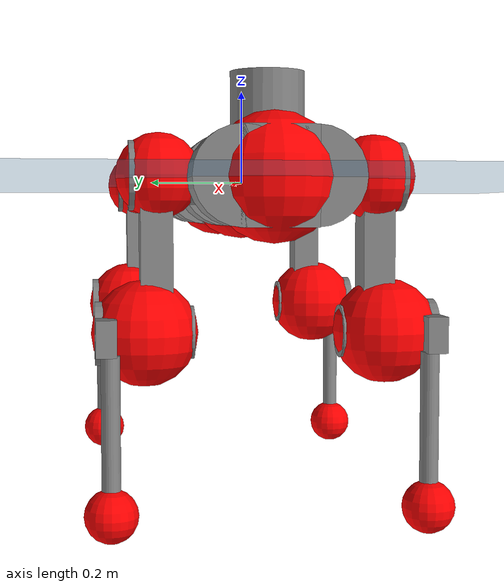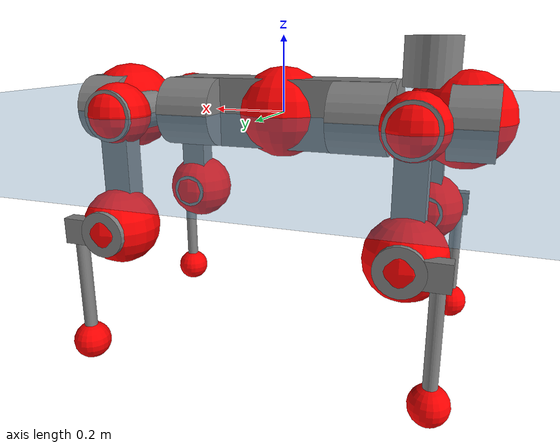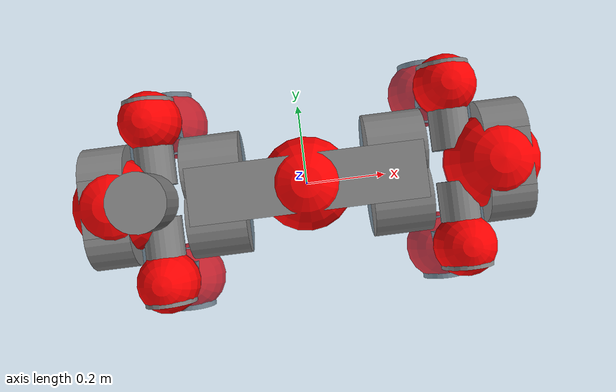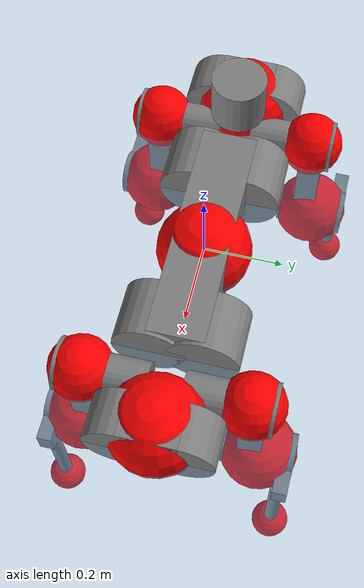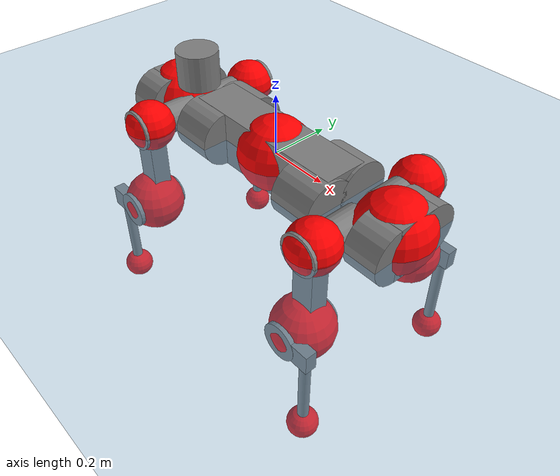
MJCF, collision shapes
<mujoco model="anymal_c">
  <compiler angle="radian" assetdir="assets" balanceinertia="true" inertiafromgeom="false"/>

  <option timestep="0.005" density="1.2" viscosity="2e-05"/>

  <size nkey="1"/>

  <visual>
    <quality shadowsize="8192"/>
    <map shadowclip="0.5"/>
  </visual>

  <default>
    <default class="/">
      <material specular="0" shininess="0.25"/>
      <geom contype="0" conaffinity="0" group="1" solref="-1000 -80"/>
      <site size="0.01 0.005 0.005" group="5"/>
      <general forcelimited="true" forcerange="-80 80" biastype="affine" gainprm="80" biasprm="0 -80 -2"/>
      <default class="anymal_c">
        <joint armature="0.01" damping="0.01" frictionloss="0.1"/>
        <default class="visual">
          <geom type="mesh" group="2"/>
          <default class="visual_zflip"/>
        </default>
        <default class="collision">
          <geom type="cylinder" group="3"/>
          <default class="foot">
            <geom size="0.03 0 0" type="sphere" condim="6" priority="1" friction="0.8 0.02 0.01" solimp="0.015 1 0.03"/>
          </default>
        </default>
      </default>
      <default class="reward_collision_sphere">
        <geom group="5" rgba="1 0 0 1"/>
      </default>
    </default>
  </default>

  <asset>
    <texture type="skybox" colorspace="auto" name="//unnamed_texture_0" builtin="gradient" rgb1="0.95 0.95 0.95" rgb2="0.95 0.95 0.95" width="100" height="600"/>
    <texture type="2d" colorspace="auto" name="texplane" builtin="checker" rgb1="0.345 0.575 0.748" rgb2="0.345 0.575 0.748" markrgb="1 1 1" width="512" height="512"/>
    <texture type="2d" colorspace="linear" name="base" file="base.png"/>
    <texture type="2d" colorspace="linear" name="top_shell" file="top_shell.png"/>
    <texture type="2d" colorspace="linear" name="bottom_shell" file="bottom_shell.png"/>
    <texture type="2d" colorspace="linear" name="remote" file="remote.png"/>
    <texture type="2d" colorspace="linear" name="hatch" file="hatch.png"/>
    <texture type="2d" colorspace="linear" name="handle" file="handle.png"/>
    <texture type="2d" colorspace="linear" name="face" file="face.png"/>
    <texture type="2d" colorspace="linear" name="battery" file="battery.png"/>
    <texture type="2d" colorspace="linear" name="lidar_cage" file="lidar_cage.png"/>
    <texture type="2d" colorspace="linear" name="depth_camera" file="depth_camera.png"/>
    <texture type="2d" colorspace="linear" name="wide_angle_camera" file="wide_angle_camera.png"/>
    <texture type="2d" colorspace="linear" name="lidar" file="lidar.png"/>
    <texture type="2d" colorspace="linear" name="drive" file="drive.png"/>
    <texture type="2d" colorspace="linear" name="hip_l" file="hip_l.png"/>
    <texture type="2d" colorspace="linear" name="shank_l" file="shank_l.png"/>
    <texture type="2d" colorspace="linear" name="foot" file="foot.png"/>
    <texture type="2d" colorspace="linear" name="thigh" file="thigh.png"/>
    <texture type="2d" colorspace="linear" name="shank_r" file="shank_r.png"/>
    <texture type="2d" colorspace="linear" name="hip_r" file="hip_r.png"/>
    <material name="MatPlane" class="/" texture="texplane" texuniform="true" texrepeat="2 2" specular="0.9" shininess="0.5"/>
    <material name="black_plastic" class="/" rgba="0.007 0.007 0.007 1"/>
    <material name="green" class="/" rgba="0.052 0.178 0.033 1"/>
    <material name="red" class="/" rgba="0.178 0.006 0.005 1"/>
    <material name="yellow" class="/" rgba="0.178 0.119 0.006 1"/>
    <material name="lwl" class="/" rgba="0.8 0.8 0.8 1"/>
    <material name="base" class="/" texture="base"/>
    <material name="top_shell" class="/" texture="top_shell"/>
    <material name="bottom_shell" class="/" texture="bottom_shell"/>
    <material name="hip_l" class="/" texture="hip_l"/>
    <material name="thigh" class="/" texture="thigh"/>
    <material name="shank_l" class="/" texture="shank_l"/>
    <material name="foot" class="/" texture="foot"/>
    <material name="hip_r" class="/" texture="hip_r"/>
    <material name="shank" class="/" texture="shank_r"/>
    <material name="hatch" class="/" texture="hatch"/>
    <material name="remote" class="/" texture="remote"/>
    <material name="handle" class="/" texture="handle"/>
    <material name="face" class="/" texture="face"/>
    <material name="depth_camera" class="/" texture="depth_camera"/>
    <material name="wide_angle_camera" class="/" texture="wide_angle_camera"/>
    <material name="battery" class="/" texture="battery"/>
    <material name="lidar_cage" class="/" texture="lidar_cage"/>
    <material name="lidar" class="/" texture="lidar"/>
    <material name="drive" class="/" texture="drive"/>
    <mesh name="base_0" class="/" file="base_0.obj"/>
    <mesh name="base_1" class="/" file="base_1.obj"/>
    <mesh name="base_2" class="/" file="base_2.obj"/>
    <mesh name="base_3" class="/" file="base_3.obj"/>
    <mesh name="base_4" class="/" file="base_4.obj"/>
    <mesh name="base_5" class="/" file="base_5.obj"/>
    <mesh name="top_shell" class="/" file="top_shell.obj"/>
    <mesh name="bottom_shell" class="/" file="bottom_shell.obj"/>
    <mesh name="remote" class="/" file="remote.obj"/>
    <mesh name="handle" class="/" file="handle.obj"/>
    <mesh name="face" class="/" file="face.obj"/>
    <mesh name="wide_angle_camera" class="/" file="wide_angle_camera.obj"/>
    <mesh name="depth_camera" class="/" file="depth_camera.obj"/>
    <mesh name="battery" class="/" file="battery.obj"/>
    <mesh name="lidar_cage" class="/" file="lidar_cage.obj"/>
    <mesh name="lidar" class="/" file="lidar.obj"/>
    <mesh name="drive" class="/" file="drive.obj"/>
    <mesh name="hip_l" class="/" file="hip_l.obj"/>
    <mesh name="thigh" class="/" file="thigh.obj"/>
    <mesh name="shank_l" class="/" file="shank_l.obj"/>
    <mesh name="foot" class="/" file="foot.obj"/>
    <mesh name="hip_r" class="/" file="hip_r.obj"/>
    <mesh name="hatch" class="/" file="hatch.obj"/>
    <mesh name="shank_r" class="/" file="shank_r.obj"/>
  </asset>

  <worldbody>
    <geom name="floor" class="/" size="100 100 0.125" type="plane" group="0" material="MatPlane"/>
    <light name="toplight_shadow" class="/" pos="0 0 5" dir="0.0990148 0.0990148 -0.990148" type="directional" ambient="0.04 0.04 0.04" diffuse="0.55 0.55 0.55" specular="0.12 0.12 0.12"/>
    <light name="toplight_fill" class="/" pos="0 0 5" dir="0.0990148 0.0990148 -0.990148" type="directional" castshadow="false" ambient="0.04 0.04 0.04" diffuse="0.3 0.3 0.3" specular="0.08 0.08 0.08"/>
    <body name="trunk" childclass="anymal_c" pos="-0.000511673 0.000837546 0.000216033" quat="1 0.000159754 -0.000128437 0.000104315">
      <inertial pos="0.00155044 -4.15994e-05 0.0509" quat="0.499787 0.500554 0.500187 0.499471" mass="19.932" diaginertia="0.845376 0.451655 0.261769"/>
      <joint name="//unnamed_joint_0" type="free" armature="0" damping="0" frictionloss="0"/>
      <geom name="//unnamed_geom_1" class="visual" material="green" mesh="base_0"/>
      <geom name="//unnamed_geom_2" class="visual" material="yellow" mesh="base_1"/>
      <geom name="//unnamed_geom_3" class="visual" material="red" mesh="base_2"/>
      <geom name="//unnamed_geom_4" class="visual" material="black_plastic" mesh="base_3"/>
      <geom name="//unnamed_geom_5" class="visual" material="lwl" mesh="base_4"/>
      <geom name="//unnamed_geom_6" class="visual" material="base" mesh="base_5"/>
      <geom name="trunk_1" class="collision" size="0.293228 0.0707793 0.0910019" type="box"/>
      <geom name="trunk_2" class="collision" size="0.0910019 0.0733071" pos="0.230074 0.0656421 0" quat="0.707107 0 0.707107 0"/>
      <geom name="trunk_3" class="collision" size="0.0910019 0.0733071" pos="-0.230074 0.0656421 0" quat="0.707107 0 0.707107 0"/>
      <geom name="trunk_4" class="collision" size="0.0910019 0.0733071" pos="0.230074 -0.0656421 0" quat="0.707107 0 0.707107 0"/>
      <geom name="trunk_5" class="collision" size="0.0910019 0.0733071" pos="-0.230074 -0.0656421 0" quat="0.707107 0 0.707107 0"/>
      <geom name="//unnamed_geom_12" class="visual" material="top_shell" mesh="top_shell"/>
      <geom name="//unnamed_geom_13" class="visual" material="bottom_shell" mesh="bottom_shell"/>
      <geom name="//unnamed_geom_14" class="visual" material="remote" mesh="remote"/>
      <geom name="//unnamed_geom_15" class="visual" material="handle" mesh="handle"/>
      <geom name="//unnamed_geom_16" class="visual" pos="0.438463 0 0" quat="1 0 0 0" material="face" mesh="face"/>
      <geom name="trunk_6" class="collision" size="0.0556123 0.0707793 0.0910019" pos="0.496642 0 0" type="box"/>
      <geom name="//unnamed_geom_18" class="collision" size="0.0910019 0.0556123" pos="0.496642 0.0656421 0" quat="0.707107 0 0.707107 0"/>
      <geom name="//unnamed_geom_19" class="collision" size="0.0910019 0.0556123" pos="0.496642 -0.0656421 0" quat="0.707107 0 0.707107 0"/>
      <geom name="//unnamed_geom_20" class="visual" pos="0.488338 0 -0.0301532" quat="0.965926 0 0.258819 0" material="depth_camera" mesh="depth_camera"/>
      <geom name="//unnamed_geom_21" class="visual" pos="0.542657 0 0.0155365" material="wide_angle_camera" mesh="wide_angle_camera"/>
      <geom name="//unnamed_geom_22" class="visual_zflip" pos="-0.438463 0 0" quat="0 0 0 1" material="face" mesh="face"/>
      <geom name="trunk_7" class="collision" size="0.0556123 0.0707793 0.0910019" pos="-0.496642 0 0" quat="0 0 0 1" type="box"/>
      <geom name="//unnamed_geom_24" class="collision" size="0.0910019 0.0556123" pos="-0.496642 -0.0656421 0" quat="0 -0.707107 0 0.707107"/>
      <geom name="//unnamed_geom_25" class="collision" size="0.0910019 0.0556123" pos="-0.496642 0.0656421 0" quat="0 -0.707107 0 0.707107"/>
      <geom name="//unnamed_geom_26" class="visual" pos="-0.488338 0 -0.0301532" quat="0 -0.258819 0 0.965926" material="depth_camera" mesh="depth_camera"/>
      <geom name="//unnamed_geom_27" class="visual_zflip" pos="-0.542657 0 0.0155365" quat="0 0 0 1" material="wide_angle_camera" mesh="wide_angle_camera"/>
      <geom name="//unnamed_geom_28" class="visual" material="battery" mesh="battery"/>
      <geom name="//unnamed_geom_29" class="visual" pos="0 0.0701236 0.0303011" quat="0.683013 -0.183013 0.183013 0.683013" material="depth_camera" mesh="depth_camera"/>
      <geom name="//unnamed_geom_30" class="visual" pos="0 -0.0701236 0.0303011" quat="0.683013 0.183013 0.183013 -0.683013" material="depth_camera" mesh="depth_camera"/>
      <geom name="//unnamed_geom_31" class="visual" pos="-0.385043 0 0.0762814" quat="1 0 0 0" material="lidar_cage" mesh="lidar_cage"/>
      <geom name="trunk_8" class="collision" size="0.0707793 0.0606679" pos="-0.385043 0 0.138552"/>
      <geom name="//unnamed_geom_33" class="visual" pos="-0.385043 -4.71709e-05 0.147581" quat="0.707107 0 0 -0.707107" material="lidar" mesh="lidar"/>
      <geom name="//unnamed_geom_34" class="visual" pos="0.317237 0.097561 -1.72669e-09" quat="0.258819 0.965926 0 0" material="drive" mesh="drive"/>
      <geom name="//unnamed_geom_35" class="visual" pos="0.317237 -0.097561 1.72669e-09" quat="0.258819 -0.965926 0 0" material="drive" mesh="drive"/>
      <geom name="//unnamed_geom_36" class="visual" pos="-0.317237 0.097561 1.72669e-09" quat="0 0 0.965926 -0.258819" material="drive" mesh="drive"/>
      <geom name="//unnamed_geom_37" class="visual" pos="-0.317237 -0.097561 -1.72669e-09" quat="0 0 -0.965926 -0.258819" material="drive" mesh="drive"/>
      <geom name="//unnamed_geom_38" class="visual" pos="0.122706 0 0.0757624" quat="1 0 0 0" material="hatch" mesh="hatch"/>
      <geom name="//unnamed_geom_39" class="reward_collision_sphere" size="0.121336"/>
      <geom name="//unnamed_geom_40" class="reward_collision_sphere" size="0.121336" pos="0.476015 0 0"/>
      <geom name="//unnamed_geom_41" class="reward_collision_sphere" size="0.121336" pos="-0.476015 0 0"/>
      <site name="imu" pos="0.263363 0.00753445 0.0460337" size="0.0101113"/>
      <camera name="track" pos="0 -1.87549 0" quat="0.707107 0.707107 0 0" mode="trackcom"/>
      <camera name="ego_camera" pos="0.476015 0 -0.0415137" quat="-0.5 -0.5 0.5 0.5"/>
      <body name="LF_HIP" pos="0.318118 0.0987578 -0.00107195" quat="0.258714 0.965954 0.000287365 0.000122907">
        <inertial pos="0.0591879 -0.0133401 -0.00770101" quat="-0.127714 0.710654 -0.135676 0.678419" mass="2.86663" diaginertia="0.00771579 0.00354903 0.00391472"/>
        <joint name="LF_HAA" pos="0 0 0" axis="0.99999 -0.00234014 0.0039205" range="-0.713442 0.491849" armature="0.00979885" damping="0.0152906" frictionloss="0.0992193"/>
        <geom name="//unnamed_geom_42" class="visual" pos="0 -0.000101573 1.66833e-05" quat="0.258819 -0.965926 0 0" material="hip_l" mesh="hip_l"/>
        <geom name="//unnamed_geom_43" class="visual" pos="0.0633629 -0.0752323 -0.0441758" quat="0.183013 -0.683013 0.683013 0.183013" material="drive" mesh="drive"/>
        <geom name="//unnamed_geom_44" class="collision" size="0.0505566 0.0707793" pos="0.0633629 -0.0112152 -0.0071663" quat="-0.353553 -0.612372 0.612372 -0.353553"/>
        <body name="LF_THIGH" pos="0.0634807 -0.0679208 -0.0434781" quat="0.183113 -0.682952 0.68301 0.183148">
          <inertial pos="0.0333735 -4.35136e-05 -0.254908" quat="0.993319 -0.0050589 -0.0803535 0.0826761" mass="3.15378" diaginertia="0.0401561 0.0217768 0.00504648"/>
          <joint name="LF_HFE" pos="0 0 0" axis="0.999994 0.00171398 -0.00301919" stiffness="0.00513459" range="-3.13655 3.12484" armature="0.00975098" damping="0.00423319" frictionloss="0.0976216"/>
          <geom name="//unnamed_geom_45" class="visual" pos="0.00238885 3.76427e-06 0" quat="0.707107 0 0 -0.707107" material="thigh" mesh="thigh"/>
          <geom name="//unnamed_geom_46" class="collision" size="0.0657236 0.0404453" pos="0.0423124 0 0" quat="0.5 0.5 -0.5 -0.5"/>
          <geom name="//unnamed_geom_47" class="collision" size="0.0379175 0.030334 0.142887" pos="0.0317343 0 -0.146662" quat="0.707107 0 0 -0.707107" type="box"/>
          <geom name="//unnamed_geom_48" class="visual" pos="0.106098 0 -0.295785" quat="1 0 0 0" material="drive" mesh="drive"/>
          <geom name="//unnamed_geom_49" class="collision" size="0.0505566 0.0707793" pos="0.0320517 0 -0.295785" quat="0.707107 0 0.707107 0"/>
          <geom name="//unnamed_geom_50" class="reward_collision_sphere" size="0.0808906" pos="0.0264453 0 0"/>
          <body name="LF_SHANK" pos="0.106534 -0.000146692 -0.296029" quat="1 3.36661e-07 0.000462482 0.00020377">
            <inertial pos="0.00486287 -0.0582081 -0.0830423" quat="0.992939 -0.115923 -0.0012233 -0.02515" mass="0.610712" diaginertia="0.0134286 0.00663371 0.00136205"/>
            <joint name="LF_KFE" pos="0 0 0" axis="1 0.000766612 0.000317796" range="-3.13487 3.14511" armature="0.0105893" damping="0.00921937" frictionloss="0.100371"/>
            <geom name="//unnamed_geom_51" class="visual" pos="0.000778952 0.00415341 0" quat="0.707107 0 0 -0.707107" material="shank_l" mesh="shank_l"/>
            <geom name="LF_kfe_act" class="collision" size="0.0606679 0.0202226" pos="0.0211562 0 0" quat="0.5 0.5 -0.5 -0.5"/>
            <geom name="//unnamed_geom_53" class="collision" size="0.0581391 0.0341257 0.0192115" pos="0.0211562 -0.0539194 0" quat="0.5 0.5 -0.5 -0.5" type="box"/>
            <geom name="//unnamed_geom_54" class="visual" pos="0.0138042 -0.0811361 -0.350759" quat="0.382683 0 0 -0.92388" material="foot" mesh="foot"/>
            <geom name="LF_calf" class="collision" size="0.0176948 0.142824" pos="0.0138044 -0.0824746 -0.17538" quat="0.707107 0 0 -0.707107"/>
            <geom name="LF_foot" class="foot" size="0.0288002" pos="0.0138044 -0.0824746 -0.327408" quat="0.707107 0 0 -0.707107"/>
            <geom name="//unnamed_geom_57" class="reward_collision_sphere" size="0.101113" pos="-0.0528905 0 0"/>
            <geom name="//unnamed_geom_58" class="reward_collision_sphere" size="0.0505566" pos="0.0138044 -0.0824746 -0.327408"/>
            <site name="LF_foot" class="foot" pos="0.0138044 -0.0824746 -0.327408" quat="0.707107 0 0 -0.707107" size="0.0101113"/>
          </body>
        </body>
      </body>
      <body name="RF_HIP" pos="0.317784 -0.0979896 -0.000307127" quat="0.258783 -0.965935 8.94608e-05 -0.000132529">
        <inertial pos="0.0595817 0.0149195 -0.0086243" quat="0.135706 0.678357 0.127794 0.710693" mass="2.88816" diaginertia="0.0076523 0.00350765 0.00396452"/>
        <joint name="RF_HAA" pos="0 0 0" axis="0.999999 -0.000631117 0.000968766" stiffness="0.00113375" range="-0.510376 0.725289" armature="0.00978068" damping="0.00980939" frictionloss="0.104081"/>
        <geom name="//unnamed_geom_59" class="visual" pos="0 0.000101572 1.66833e-05" quat="0.258819 0.965926 0 0" material="hip_r" mesh="hip_r"/>
        <geom name="//unnamed_geom_60" class="visual" pos="0.0633629 0.0752323 -0.0441758" quat="0.183013 0.683013 0.683013 -0.183013" material="drive" mesh="drive"/>
        <geom name="//unnamed_geom_61" class="collision" size="0.0505566 0.0707793" pos="0.0633629 0.0112152 -0.0071663" quat="-0.353553 0.612372 0.612372 0.353553"/>
        <body name="RF_THIGH" pos="0.0639383 0.0677361 -0.0442087" quat="0.18301 0.683004 0.683022 -0.183014">
          <inertial pos="0.0334768 -0.000799933 -0.255201" quat="0.992703 -0.00482341 -0.0812084 0.0890075" mass="3.14045" diaginertia="0.0401359 0.0218136 0.00507285"/>
          <joint name="RF_HFE" pos="0 0 0" axis="0.999999 0.000508664 0.00107093" stiffness="0.00673253" range="-3.14727 3.13928" armature="0.0101395" damping="0.00941384" frictionloss="0.099095"/>
          <geom name="//unnamed_geom_62" class="visual" pos="0.00238885 3.76427e-06 0" quat="0.707107 0 0 -0.707107" material="thigh" mesh="thigh"/>
          <geom name="//unnamed_geom_63" class="collision" size="0.0657236 0.0404453" pos="0.0423124 0 0" quat="0.5 0.5 0.5 0.5"/>
          <geom name="//unnamed_geom_64" class="collision" size="0.0379175 0.030334 0.142887" pos="0.0317343 0 -0.146662" quat="0.707107 0 0 0.707107" type="box"/>
          <geom name="//unnamed_geom_65" class="visual" pos="0.106098 0 -0.295785" quat="1 0 0 0" material="drive" mesh="drive"/>
          <geom name="//unnamed_geom_66" class="collision" size="0.0505566 0.0707793" pos="0.0320517 0 -0.295785" quat="0.707107 0 0.707107 0"/>
          <geom name="//unnamed_geom_67" class="reward_collision_sphere" size="0.0808906" pos="0.0264453 0 0"/>
          <body name="RF_SHANK" pos="0.104872 0.000291972 -0.296183" quat="1 7.05676e-06 -2.78284e-05 -3.53369e-05">
            <inertial pos="0.00511783 0.0573576 -0.0839599" quat="0.992882 0.11619 -0.000981978 0.0261669" mass="0.608484" diaginertia="0.0133551 0.0067315 0.00133768"/>
            <joint name="RF_KFE" pos="0 0 0" axis="0.999997 0.00252715 0.000741149" range="-3.13243 3.13832" armature="0.00995781" damping="0.00500744" frictionloss="0.103467"/>
            <geom name="//unnamed_geom_68" class="visual" pos="0.000778947 -0.0041534 0" quat="0.707107 0 0 0.707107" material="shank" mesh="shank_r"/>
            <geom name="RF_kfe_act" class="collision" size="0.0606679 0.0202226" pos="0.0211562 0 0" quat="0.5 0.5 0.5 0.5"/>
            <geom name="//unnamed_geom_70" class="collision" size="0.0581391 0.0341257 0.0192115" pos="0.0211562 0.0539194 0" quat="0.5 0.5 0.5 0.5" type="box"/>
            <geom name="//unnamed_geom_71" class="visual" pos="0.0138046 0.0811361 -0.350759" quat="0.382683 0 0 0.92388" material="foot" mesh="foot"/>
            <geom name="RF_calf" class="collision" size="0.0176948 0.142824" pos="0.0138044 0.0824746 -0.17538" quat="0.707107 0 0 0.707107"/>
            <geom name="RF_foot" class="foot" size="0.0298076" pos="0.0138044 0.0824746 -0.327408" quat="0.707107 0 0 0.707107"/>
            <geom name="//unnamed_geom_74" class="reward_collision_sphere" size="0.101113" pos="-0.0528905 0 0"/>
            <geom name="//unnamed_geom_75" class="reward_collision_sphere" size="0.0505566" pos="0.0138044 0.0824746 -0.327408"/>
            <site name="RF_foot" class="foot" pos="0.0138044 0.0824746 -0.327408" quat="0.707107 0 0 0.707107" size="0.0101113"/>
          </body>
        </body>
      </body>
      <body name="LH_HIP" pos="-0.316932 0.0981827 -0.000406268" quat="-0.000185621 -0.00033997 0.965782 -0.259354">
        <inertial pos="0.0606471 0.0136511 -0.00886091" quat="0.13501 0.67902 0.128137 0.71013" mass="2.88368" diaginertia="0.00773116 0.0035235 0.00392775"/>
        <joint name="LH_HAA" pos="0 0 0" axis="1 -0.000130774 -0.000615627" range="-0.503067 0.726439" armature="0.0100943" damping="0.00922371" frictionloss="0.100279"/>
        <geom name="//unnamed_geom_76" class="visual" pos="0 0.000101572 1.66833e-05" quat="-0.258819 -0.965926 0 0" material="hip_r" mesh="hip_r"/>
        <geom name="//unnamed_geom_77" class="visual" pos="0.0633629 0.0752323 -0.0441758" quat="0.183013 0.683013 0.683013 -0.183013" material="drive" mesh="drive"/>
        <geom name="//unnamed_geom_78" class="collision" size="0.0505566 0.0707793" pos="0.0633629 0.0112152 -0.0071663" quat="-0.353553 0.612372 0.612372 0.353553"/>
        <body name="LH_THIGH" pos="0.0622482 0.0672979 -0.0446063" quat="0.183052 0.683045 0.682984 -0.18296">
          <inertial pos="0.0324713 -0.000462092 -0.255165" quat="0.992836 -0.00497483 -0.0802674 0.0883655" mass="3.18542" diaginertia="0.040226 0.021825 0.0050435"/>
          <joint name="LH_HFE" pos="0 0 0" axis="0.999995 -0.00312698 0.000723471" range="-3.14731 3.13528" armature="0.010513" damping="0.00476491" frictionloss="0.101079"/>
          <geom name="//unnamed_geom_79" class="visual" pos="0.00238885 3.76427e-06 0" quat="0.707107 0 0 -0.707107" material="thigh" mesh="thigh"/>
          <geom name="//unnamed_geom_80" class="collision" size="0.0657236 0.0404453" pos="0.0423124 0 0" quat="0.5 0.5 -0.5 -0.5"/>
          <geom name="//unnamed_geom_81" class="collision" size="0.0379175 0.030334 0.142887" pos="0.0317343 0 -0.146662" quat="0.707107 0 0 -0.707107" type="box"/>
          <geom name="//unnamed_geom_82" class="visual" pos="0.106098 0 -0.295785" quat="1 0 0 0" material="drive" mesh="drive"/>
          <geom name="//unnamed_geom_83" class="collision" size="0.0505566 0.0707793" pos="0.0320517 0 -0.295785" quat="0.707107 0 0.707107 0"/>
          <geom name="//unnamed_geom_84" class="reward_collision_sphere" size="0.0808906" pos="0.0264453 0 0"/>
          <body name="LH_SHANK" pos="0.105878 -0.000308624 -0.29637" quat="1 -8.89532e-05 1.60011e-05 2.956e-05">
            <inertial pos="0.00585678 0.0572958 -0.0845706" quat="0.992947 0.115758 -0.000750162 0.025605" mass="0.607019" diaginertia="0.013488 0.00669419 0.00135305"/>
            <joint name="LH_KFE" pos="0 0 0" axis="0.999998 -0.00176702 -0.00105195" range="-3.15212 3.14019" armature="0.01019" damping="0.00537248" frictionloss="0.100752"/>
            <geom name="//unnamed_geom_85" class="visual" pos="0.000778947 -0.0041534 0" quat="-0.707107 0 0 -0.707107" material="shank" mesh="shank_r"/>
            <geom name="LH_kfe_act" class="collision" size="0.0606679 0.0202226" pos="0.0211562 0 0" quat="0.5 0.5 -0.5 -0.5"/>
            <geom name="//unnamed_geom_87" class="collision" size="0.0581391 0.0341257 0.0192115" pos="0.0211562 0.0539194 0" quat="0.5 0.5 -0.5 -0.5" type="box"/>
            <geom name="//unnamed_geom_88" class="visual" pos="0.0138046 0.0811361 -0.350759" quat="-0.382683 0 0 -0.92388" material="foot" mesh="foot"/>
            <geom name="LH_calf" class="collision" size="0.0176948 0.142824" pos="0.0138044 0.0824746 -0.17538" quat="0.707107 0 0 -0.707107"/>
            <geom name="LH_foot" class="foot" size="0.0304481" pos="0.0138044 0.0824746 -0.327408" quat="0.707107 0 0 -0.707107"/>
            <geom name="//unnamed_geom_91" class="reward_collision_sphere" size="0.101113" pos="-0.0528905 0 0"/>
            <geom name="//unnamed_geom_92" class="reward_collision_sphere" size="0.0505566" pos="0.0138044 0.0824746 -0.327408"/>
            <site name="LH_foot" class="foot" pos="0.0138044 0.0824746 -0.327408" quat="0.707107 0 0 -0.707107" size="0.0101113"/>
          </body>
        </body>
      </body>
      <body name="RH_HIP" pos="-0.31665 -0.0983828 -9.22145e-05" quat="-0.000344871 3.56323e-05 -0.965977 -0.258626">
        <inertial pos="0.0599954 -0.0150028 -0.00886295" quat="-0.128187 0.710121 -0.135077 0.679007" mass="2.86806" diaginertia="0.00765396 0.00351792 0.00396647"/>
        <joint name="RH_HAA" pos="0 0 0" axis="1 -0.000112665 0.000125615" range="-0.717633 0.496004" armature="0.0103249" damping="0.016107" frictionloss="0.101889"/>
        <geom name="//unnamed_geom_93" class="visual" pos="0 -0.000101573 1.66833e-05" quat="-0.258819 0.965926 0 0" material="hip_l" mesh="hip_l"/>
        <geom name="//unnamed_geom_94" class="visual" pos="0.0633629 -0.0752323 -0.0441758" quat="-0.183013 0.683013 -0.683013 -0.183013" material="drive" mesh="drive"/>
        <geom name="//unnamed_geom_95" class="collision" size="0.0505566 0.0707793" pos="0.0633629 -0.0112152 -0.0071663" quat="0.353553 0.612372 -0.612372 0.353553"/>
        <body name="RH_THIGH" pos="0.0629875 -0.0684352 -0.0436382" quat="-0.183012 0.683082 -0.682965 -0.182934">
          <inertial pos="0.0327499 0.000774391 -0.255142" quat="0.9932 -0.00492292 -0.0807612 0.083714" mass="3.20482" diaginertia="0.040298 0.0217142 0.00503881"/>
          <joint name="RH_HFE" pos="0 0 0" axis="1 -0.000460065 -0.000418407" range="-3.1429 3.12498" armature="0.00967974" damping="0.00534935" frictionloss="0.0989837"/>
          <geom name="//unnamed_geom_96" class="visual" pos="0.00238885 3.76427e-06 0" quat="0.707107 0 0 -0.707107" material="thigh" mesh="thigh"/>
          <geom name="//unnamed_geom_97" class="collision" size="0.0657236 0.0404453" pos="0.0423124 0 0" quat="0.5 0.5 0.5 0.5"/>
          <geom name="//unnamed_geom_98" class="collision" size="0.0379175 0.030334 0.142887" pos="0.0317343 0 -0.146662" quat="0.707107 0 0 0.707107" type="box"/>
          <geom name="//unnamed_geom_99" class="visual" pos="0.106098 0 -0.295785" quat="1 0 0 0" material="drive" mesh="drive"/>
          <geom name="//unnamed_geom_100" class="collision" size="0.0505566 0.0707793" pos="0.0320517 0 -0.295785" quat="0.707107 0 0.707107 0"/>
          <geom name="//unnamed_geom_101" class="reward_collision_sphere" size="0.0808906" pos="0.0264453 0 0"/>
          <body name="RH_SHANK" pos="0.10467 -0.000485408 -0.295433" quat="1 0.00013621 0.000103149 0.000100595">
            <inertial pos="0.00687457 -0.0572963 -0.0845972" quat="0.992865 -0.116407 -0.000207506 -0.025859" mass="0.609723" diaginertia="0.0132106 0.00670882 0.00132178"/>
            <joint name="RH_KFE" pos="0 0 0" axis="0.999985 0.000337706 0.00547522" range="-3.13942 3.15593" armature="0.0104421" damping="0.0109112" frictionloss="0.103055"/>
            <geom name="//unnamed_geom_102" class="visual" pos="0.000778952 0.00415341 0" quat="0.707107 0 0 -0.707107" material="shank_l" mesh="shank_l"/>
            <geom name="RH_kfe_act" class="collision" size="0.0606679 0.0202226" pos="0.0211562 0 0" quat="0.5 0.5 0.5 0.5"/>
            <geom name="//unnamed_geom_104" class="collision" size="0.0581391 0.0341257 0.0192115" pos="0.0211562 -0.0539194 0" quat="0.5 0.5 0.5 0.5" type="box"/>
            <geom name="//unnamed_geom_105" class="visual" pos="0.0138042 -0.0811361 -0.350759" quat="0.382683 0 0 -0.92388" material="foot" mesh="foot"/>
            <geom name="RH_calf" class="collision" size="0.0176948 0.142824" pos="0.0138044 -0.0824746 -0.17538" quat="0.707107 0 0 0.707107"/>
            <geom name="RH_foot" class="foot" size="0.0278306" pos="0.0138044 -0.0824746 -0.327408" quat="0.707107 0 0 0.707107"/>
            <geom name="//unnamed_geom_108" class="reward_collision_sphere" size="0.101113" pos="-0.0528905 0 0"/>
            <geom name="//unnamed_geom_109" class="reward_collision_sphere" size="0.0505566" pos="0.0138044 -0.0824746 -0.327408"/>
            <site name="RH_foot" class="foot" pos="0.0138044 -0.0824746 -0.327408" quat="0.707107 0 0 0.707107" size="0.0101113"/>
          </body>
        </body>
      </body>
    </body>
  </worldbody>

  <contact>
    <pair class="/" geom1="floor" geom2="LF_foot" name="//unnamed_contact_0"/>
    <pair class="/" geom1="floor" geom2="RF_foot" name="//unnamed_contact_1"/>
    <pair class="/" geom1="floor" geom2="LH_foot" name="//unnamed_contact_2"/>
    <pair class="/" geom1="floor" geom2="RH_foot" name="//unnamed_contact_3"/>
  </contact>

  <actuator>
    <general name="LF_HAA" class="/" joint="LF_HAA" forcerange="-81.1857 81.1857" gainprm="81.7244" biasprm="0 -81.7244 -1.95712"/>
    <general name="LF_HFE" class="/" joint="LF_HFE" forcerange="-82.9363 82.9363" gainprm="81.7244" biasprm="0 -81.7244 -1.95712"/>
    <general name="LF_KFE" class="/" joint="LF_KFE" forcerange="-81.3891 81.3891" gainprm="81.7244" biasprm="0 -81.7244 -1.95712"/>
    <general name="RF_HAA" class="/" joint="RF_HAA" forcerange="-84.664 84.664" gainprm="81.7244" biasprm="0 -81.7244 -1.95712"/>
    <general name="RF_HFE" class="/" joint="RF_HFE" forcerange="-81.76 81.76" gainprm="81.7244" biasprm="0 -81.7244 -1.95712"/>
    <general name="RF_KFE" class="/" joint="RF_KFE" forcerange="-83.3229 83.3229" gainprm="81.7244" biasprm="0 -81.7244 -1.95712"/>
    <general name="LH_HAA" class="/" joint="LH_HAA" forcerange="-82.1085 82.1085" gainprm="81.7244" biasprm="0 -81.7244 -1.95712"/>
    <general name="LH_HFE" class="/" joint="LH_HFE" forcerange="-82.0141 82.0141" gainprm="81.7244" biasprm="0 -81.7244 -1.95712"/>
    <general name="LH_KFE" class="/" joint="LH_KFE" forcerange="-80.7714 80.7714" gainprm="81.7244" biasprm="0 -81.7244 -1.95712"/>
    <general name="RH_HAA" class="/" joint="RH_HAA" forcerange="-82.2394 82.2394" gainprm="81.7244" biasprm="0 -81.7244 -1.95712"/>
    <general name="RH_HFE" class="/" joint="RH_HFE" forcerange="-80.2149 80.2149" gainprm="81.7244" biasprm="0 -81.7244 -1.95712"/>
    <general name="RH_KFE" class="/" joint="RH_KFE" forcerange="-81.6204 81.6204" gainprm="81.7244" biasprm="0 -81.7244 -1.95712"/>
  </actuator>

  <sensor>
    <gyro site="imu" name="imu_angular_velocity"/>
    <velocimeter site="imu" name="imu_linear_velocity"/>
    <framelinvel objtype="site" objname="LF_foot" name="LF_foot_global_linear_velocity"/>
    <framelinvel objtype="site" objname="RF_foot" name="RF_foot_global_linear_velocity"/>
    <framelinvel objtype="site" objname="LH_foot" name="LH_foot_global_linear_velocity"/>
    <framelinvel objtype="site" objname="RH_foot" name="RH_foot_global_linear_velocity"/>
  </sensor>

  <keyframe>
    <key name="home" qpos="0 0 0.55 1 0 0 0 0 0.4 -0.8 0 -0.4 0.8 0 -0.4 0.8 0 0.4 -0.8"/>
  </keyframe>
</mujoco>
